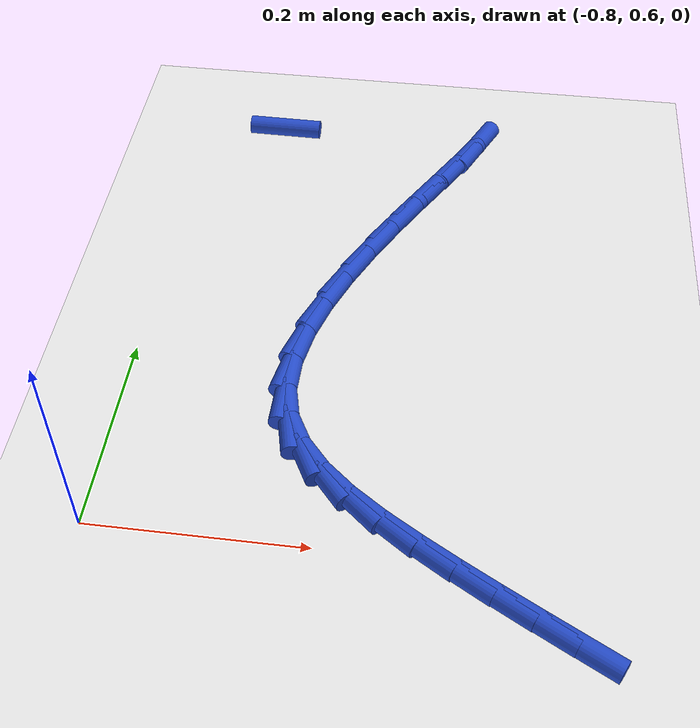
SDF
<sdf version="1.6">
 <world name="default">
  <model name="ground_plane">
   <static>1</static>
   <link name="link">
    <collision name="collision">
     <geometry><plane><normal>0 0 1</normal><size>100 100</size></plane></geometry>
     <surface><friction><ode><mu>100</mu><mu2>50</mu2></ode></friction></surface>
    </collision>
    <visual name="visual">
     <cast_shadows>0</cast_shadows>
     <geometry><plane><normal>0 0 1</normal><size>100 100</size></plane></geometry>
     <material>
      <script><uri>file://media/materials/scripts/gazebo.material</uri><name>Gazebo/WhiteGlow</name></script>
     </material>
    </visual>
   </link>
  </model>
  <model name="line">
   <link name="link_21">
    <pose>-0.38159740268115927 0.5352762250546431 0.01 0 1.57 -0.491071039803365</pose>
    <collision name="collision">
     <geometry><cylinder><radius>0.01</radius><length>0.08</length></cylinder></geometry>
    </collision>
    <visual name="visual">
     <material>
      <script><name>Gazebo/Blue</name><uri>file://media/materials/scripts/gazebo.material</uri></script>
     </material>
     <geometry><cylinder><radius>0.01</radius><length>0.08</length></cylinder></geometry>
    </visual>
   </link>
   <link name="link_22">
    <pose>-0.41470164252322916 0.5529792035221943 0.01 0 1.57 -0.4976364902991608</pose>
    <collision name="collision">
     <geometry><cylinder><radius>0.01</radius><length>0.08</length></cylinder></geometry>
    </collision>
    <visual name="visual">
     <material>
      <script><name>Gazebo/Blue</name><uri>file://media/materials/scripts/gazebo.material</uri></script>
     </material>
     <geometry><cylinder><radius>0.01</radius><length>0.08</length></cylinder></geometry>
    </visual>
   </link>
   <link name="link_23">
    <pose>-0.4478466617435196 0.5709848225870303 0.01 0 1.57 -0.509960086845654</pose>
    <collision name="collision">
     <geometry><cylinder><radius>0.01</radius><length>0.08</length></cylinder></geometry>
    </collision>
    <visual name="visual">
     <material>
      <script><name>Gazebo/Blue</name><uri>file://media/materials/scripts/gazebo.material</uri></script>
     </material>
     <geometry><cylinder><radius>0.01</radius><length>0.08</length></cylinder></geometry>
    </visual>
   </link>
   <link name="link_24">
    <pose>-0.48084379188792825 0.589440325871691 0.01 0 1.57 -0.528088850275168</pose>
    <collision name="collision">
     <geometry><cylinder><radius>0.01</radius><length>0.08</length></cylinder></geometry>
    </collision>
    <visual name="visual">
     <material>
      <script><name>Gazebo/Blue</name><uri>file://media/materials/scripts/gazebo.material</uri></script>
     </material>
     <geometry><cylinder><radius>0.01</radius><length>0.08</length></cylinder></geometry>
    </visual>
   </link>
   <link name="link_25">
    <pose>-0.5135043645023525 0.6084929569987165 0.01 0 1.57 -0.5555644324495408</pose>
    <collision name="collision">
     <geometry><cylinder><radius>0.01</radius><length>0.08</length></cylinder></geometry>
    </collision>
    <visual name="visual">
     <material>
      <script><name>Gazebo/Blue</name><uri>file://media/materials/scripts/gazebo.material</uri></script>
     </material>
     <geometry><cylinder><radius>0.01</radius><length>0.08</length></cylinder></geometry>
    </visual>
   </link>
   <link name="link_26">
    <pose>-0.545481683929184 0.6283440801608842 0.01 0 1.57 -0.6128239445450531</pose>
    <collision name="collision">
     <geometry><cylinder><radius>0.01</radius><length>0.08</length></cylinder></geometry>
    </collision>
    <visual name="visual">
     <material>
      <script><name>Gazebo/Blue</name><uri>file://media/materials/scripts/gazebo.material</uri></script>
     </material>
     <geometry><cylinder><radius>0.01</radius><length>0.08</length></cylinder></geometry>
    </visual>
   </link>
   <link name="link_27">
    <pose>-0.5755596420754402 0.6494928126955598 0.01 0 1.57 -0.7127521897390728</pose>
    <collision name="collision">
     <geometry><cylinder><radius>0.01</radius><length>0.08</length></cylinder></geometry>
    </collision>
    <visual name="visual">
     <material>
      <script><name>Gazebo/Blue</name><uri>file://media/materials/scripts/gazebo.material</uri></script>
     </material>
     <geometry><cylinder><radius>0.01</radius><length>0.08</length></cylinder></geometry>
    </visual>
   </link>
   <link name="link_28">
    <pose>-0.6022247270509058 0.6725401256889569 0.01 0 1.57 -0.8657677997520344</pose>
    <collision name="collision">
     <geometry><cylinder><radius>0.01</radius><length>0.08</length></cylinder></geometry>
    </collision>
    <visual name="visual">
     <material>
      <script><name>Gazebo/Blue</name><uri>file://media/materials/scripts/gazebo.material</uri></script>
     </material>
     <geometry><cylinder><radius>0.01</radius><length>0.08</length></cylinder></geometry>
    </visual>
   </link>
   <link name="link_29">
    <pose>-0.6239631670880293 0.6980870792291144 0.01 0 1.57 -1.0803153326070458</pose>
    <collision name="collision">
     <geometry><cylinder><radius>0.01</radius><length>0.08</length></cylinder></geometry>
    </collision>
    <visual name="visual">
     <material>
      <script><name>Gazebo/Blue</name><uri>file://media/materials/scripts/gazebo.material</uri></script>
     </material>
     <geometry><cylinder><radius>0.01</radius><length>0.08</length></cylinder></geometry>
    </visual>
   </link>
   <link name="link_30">
    <pose>-0.6392611904192603 0.7267347334040714 0.01 0 1.57 -1.3448013934974803</pose>
    <collision name="collision">
     <geometry><cylinder><radius>0.01</radius><length>0.08</length></cylinder></geometry>
    </collision>
    <visual name="visual">
     <material>
      <script><name>Gazebo/Blue</name><uri>file://media/materials/scripts/gazebo.material</uri></script>
     </material>
     <geometry><cylinder><radius>0.01</radius><length>0.08</length></cylinder></geometry>
    </visual>
   </link>
   <link name="link_31">
    <pose>-0.6466890578904758 0.7590406724687265 0.01 0 1.57 1.5584059713228573</pose>
    <collision name="collision">
     <geometry><cylinder><radius>0.01</radius><length>0.08</length></cylinder></geometry>
    </collision>
    <visual name="visual">
     <material>
      <script><name>Gazebo/Blue</name><uri>file://media/materials/scripts/gazebo.material</uri></script>
     </material>
     <geometry><cylinder><radius>0.01</radius><length>0.08</length></cylinder></geometry>
    </visual>
   </link>
   <link name="link_32">
    <pose>-0.6462456751714738 0.7948233447467188 0.01 0 1.57 1.3877105082147523</pose>
    <collision name="collision">
     <geometry><cylinder><radius>0.01</radius><length>0.08</length></cylinder></geometry>
    </collision>
    <visual name="visual">
     <material>
      <script><name>Gazebo/Blue</name><uri>file://media/materials/scripts/gazebo.material</uri></script>
     </material>
     <geometry><cylinder><radius>0.01</radius><length>0.08</length></cylinder></geometry>
    </visual>
   </link>
   <link name="link_33">
    <pose>-0.6391244765768106 0.8332831869835289 0.01 0 1.57 1.2686046594420235</pose>
    <collision name="collision">
     <geometry><cylinder><radius>0.01</radius><length>0.08</length></cylinder></geometry>
    </collision>
    <visual name="visual">
     <material>
      <script><name>Gazebo/Blue</name><uri>file://media/materials/scripts/gazebo.material</uri></script>
     </material>
     <geometry><cylinder><radius>0.01</radius><length>0.08</length></cylinder></geometry>
    </visual>
   </link>
   <link name="link_34">
    <pose>-0.6265556351311244 0.873601628470697 0.01 0 1.57 1.185236775959328</pose>
    <collision name="collision">
     <geometry><cylinder><radius>0.01</radius><length>0.08</length></cylinder></geometry>
    </collision>
    <visual name="visual">
     <material>
      <script><name>Gazebo/Blue</name><uri>file://media/materials/scripts/gazebo.material</uri></script>
     </material>
     <geometry><cylinder><radius>0.01</radius><length>0.08</length></cylinder></geometry>
    </visual>
   </link>
   <link name="link_35">
    <pose>-0.609769323859054 0.9149600984997613 0.01 0 1.57 1.1268939732735868</pose>
    <collision name="collision">
     <geometry><cylinder><radius>0.01</radius><length>0.08</length></cylinder></geometry>
    </collision>
    <visual name="visual">
     <material>
      <script><name>Gazebo/Blue</name><uri>file://media/materials/scripts/gazebo.material</uri></script>
     </material>
     <geometry><cylinder><radius>0.01</radius><length>0.08</length></cylinder></geometry>
    </visual>
   </link>
   <link name="link_36">
    <pose>-0.5899957157852381 0.9565400263622604 0.01 0 1.57 1.0870671492082775</pose>
    <collision name="collision">
     <geometry><cylinder><radius>0.01</radius><length>0.08</length></cylinder></geometry>
    </collision>
    <visual name="visual">
     <material>
      <script><name>Gazebo/Blue</name><uri>file://media/materials/scripts/gazebo.material</uri></script>
     </material>
     <geometry><cylinder><radius>0.01</radius><length>0.08</length></cylinder></geometry>
    </visual>
   </link>
   <link name="link_37">
    <pose>-0.5684649839343152 0.9975228413497345 0.01 0 1.57 1.0622323490488503</pose>
    <collision name="collision">
     <geometry><cylinder><radius>0.01</radius><length>0.08</length></cylinder></geometry>
    </collision>
    <visual name="visual">
     <material>
      <script><name>Gazebo/Blue</name><uri>file://media/materials/scripts/gazebo.material</uri></script>
     </material>
     <geometry><cylinder><radius>0.01</radius><length>0.08</length></cylinder></geometry>
    </visual>
   </link>
   <link name="link_38">
    <pose>-0.5464073013309236 1.0370899727537224 0.01 0 1.57 1.0512184469167245</pose>
    <collision name="collision">
     <geometry><cylinder><radius>0.01</radius><length>0.08</length></cylinder></geometry>
    </collision>
    <visual name="visual">
     <material>
      <script><name>Gazebo/Blue</name><uri>file://media/materials/scripts/gazebo.material</uri></script>
     </material>
     <geometry><cylinder><radius>0.01</radius><length>0.08</length></cylinder></geometry>
    </visual>
   </link>
   <link name="link_39">
    <pose>-0.5250528409997021 1.0744228498657626 0.01 0 1.57 1.055342224895024</pose>
    <collision name="collision">
     <geometry><cylinder><radius>0.01</radius><length>0.08</length></cylinder></geometry>
    </collision>
    <visual name="visual">
     <material>
      <script><name>Gazebo/Blue</name><uri>file://media/materials/scripts/gazebo.material</uri></script>
     </material>
     <geometry><cylinder><radius>0.01</radius><length>0.08</length></cylinder></geometry>
    </visual>
   </link>
   <link name="link_40">
    <pose>-0.5056317759652891 1.1087029019773942 0.01 0 1.57 1.079827042895526</pose>
    <collision name="collision">
     <geometry><cylinder><radius>0.01</radius><length>0.08</length></cylinder></geometry>
    </collision>
    <visual name="visual">
     <material>
      <script><name>Gazebo/Blue</name><uri>file://media/materials/scripts/gazebo.material</uri></script>
     </material>
     <geometry><cylinder><radius>0.01</radius><length>0.08</length></cylinder></geometry>
    </visual>
   </link>
   <link name="link_41">
    <pose>-0.4893742792523235 1.1391115583801572 0.01 0 1.57 1.138594013375491</pose>
    <collision name="collision">
     <geometry><cylinder><radius>0.01</radius><length>0.08</length></cylinder></geometry>
    </collision>
    <visual name="visual">
     <material>
      <script><name>Gazebo/Blue</name><uri>file://media/materials/scripts/gazebo.material</uri></script>
     </material>
     <geometry><cylinder><radius>0.01</radius><length>0.08</length></cylinder></geometry>
    </visual>
   </link>
   <link name="link_52">
    <pose>-0.7098618503295954 1.149122859670975 0.01 0 1.57 -0.013909241696917369</pose>
    <collision name="collision">
     <geometry><cylinder><radius>0.01</radius><length>0.08</length></cylinder></geometry>
    </collision>
    <visual name="visual">
     <material>
      <script><name>Gazebo/Blue</name><uri>file://media/materials/scripts/gazebo.material</uri></script>
     </material>
     <geometry><cylinder><radius>0.01</radius><length>0.08</length></cylinder></geometry>
    </visual>
   </link>
  </model>
 </world>
</sdf>
